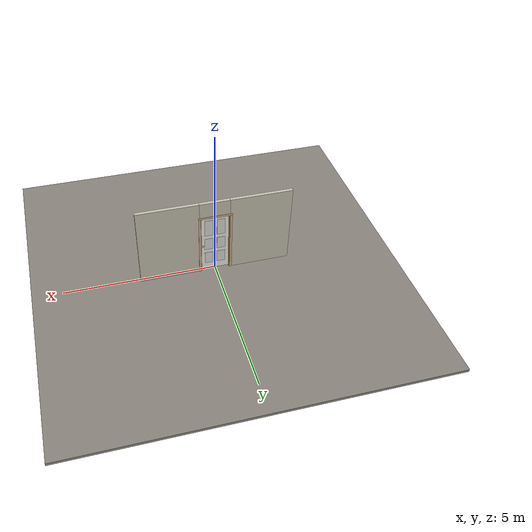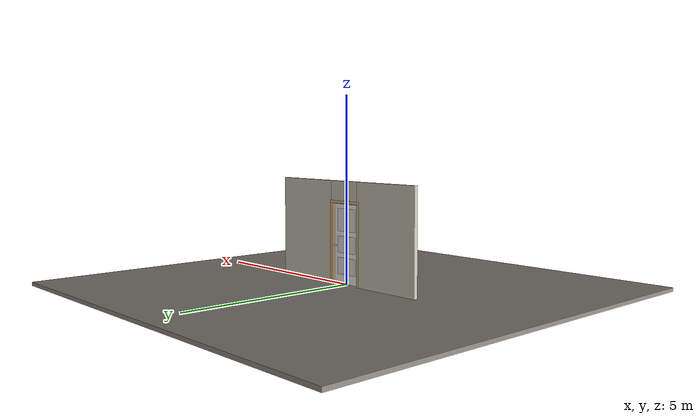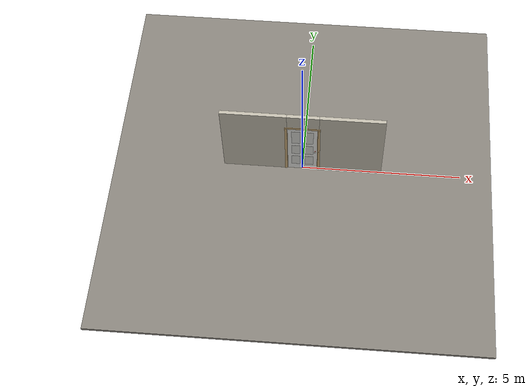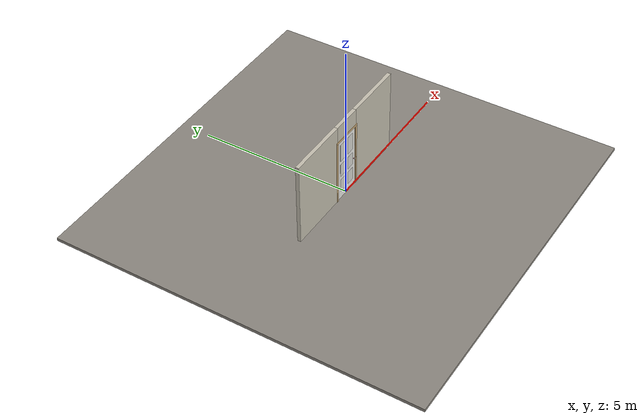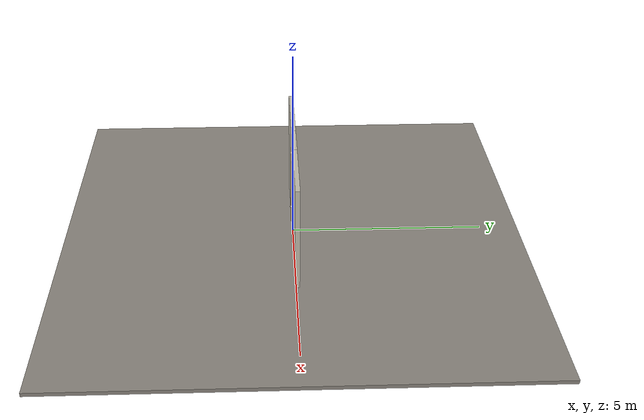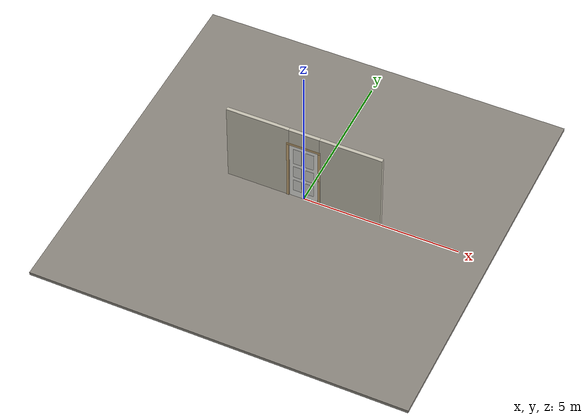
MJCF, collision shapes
<?xml version="1.0" ?>
<mujoco model="db0685_swing_single_full">
  <compiler angle="radian" meshdir="../../hardware" texturedir="../../textures" autolimits="true" inertiafromgeom="false"/>
  <option timestep="0.002" integrator="implicitfast" cone="elliptic" impratio="10" noslip_iterations="3">
    <flag multiccd="enable"/>
  </option>
  <size memory="16M"/>
  <default>
    <geom condim="4" solref="0.005 1" solimp="0.95 0.99 0.001"/>
    <joint solreflimit="0.005 1" solimplimit="0.95 0.99 0.001"/>
    <tendon solreflimit="0.005 1"/>
    <equality solref="0.002 1"/>
  </default>
  <visual>
    <headlight ambient="0.4 0.4 0.4" diffuse="0.7 0.7 0.7" specular="0.2 0.2 0.2"/>
    <quality shadowsize="4096"/>
    <map znear="0.01" zfar="60"/>
  </visual>
  <asset>
    <mesh name="hinge_9ae1f9b7de" file="hinge_9ae1f9b7de.obj"/>
    <mesh name="hinge_jamb_50e97ebc96" file="hinge_jamb_50e97ebc96.obj"/>
    <mesh name="knob_248d825e64" file="knob_248d825e64.obj"/>
    <mesh name="knob_d1888f6f03" file="knob_d1888f6f03.obj"/>
    <material name="mat_floor" rgba="0.55 0.53 0.5 1" specular="0.2" shininess="0.15" reflectance="0"/>
    <material name="mat_wall" rgba="0.78 0.76 0.7 1" specular="0.2" shininess="0.1" reflectance="0"/>
    <material name="mat_leaf" rgba="0.93 0.93 0.91 1" specular="0.2" shininess="0.36" reflectance="0"/>
    <material name="mat_leaf_panel" rgba="0.856 0.856 0.837 1" specular="0.2" shininess="0.36" reflectance="0"/>
    <material name="mat_hinge" rgba="0.65 0.66 0.68 1" specular="0.74" shininess="0.5" reflectance="0.36"/>
    <material name="mat_op_nickel_satin" rgba="0.72 0.7 0.66 1" specular="0.8" shininess="0.65" reflectance="0.4"/>
    <material name="mat_trim" rgba="0.85 0.66 0.3 1" specular="0.8" shininess="0.75" reflectance="0.4"/>
    <material name="mat_bolt" rgba="0.85 0.66 0.3 1" specular="0.8" shininess="0.75" reflectance="0.4"/>
    <material name="mat_frame" rgba="0.82 0.7 0.5 1" specular="0.2" shininess="0.45" reflectance="0"/>
    <texture name="skybox" type="skybox" builtin="gradient" rgb1="0.6 0.7 0.85" rgb2="0.9 0.92 0.95" width="256" height="256"/>
  </asset>
  <worldbody>
    <light name="sun" pos="1.5 -2.5 4" dir="-0.3 0.5 -0.8" directional="true" diffuse="0.8 0.8 0.8" specular="0.3 0.3 0.3" castshadow="true"/>
    <light name="fill" pos="-1.5 2.5 3" dir="0.3 -0.5 -0.7" directional="true" diffuse="0.35 0.35 0.4" castshadow="false"/>
    <camera name="robot_view" pos="0 -2.604812 1.812087" xyaxes="1 0 0 0 0.26963 0.962964" fovy="52"/>
    <camera name="far_view" pos="0 2.670812 1.812087" xyaxes="-1 0 0 0 -0.26963 0.962964" fovy="52"/>
    <camera name="iso" pos="2.004737 -2.182762 2.234138" xyaxes="0.741536 0.670913 0 -0.242917 0.268487 0.932151" fovy="46"/>
    <camera name="detail_handle" pos="0.5765 -0.864 1.296" xyaxes="0.97561 0.219512 0 -0.070934 0.315262 0.94635" fovy="38"/>
    <geom name="floor" type="box" size="6 6 0.05" pos="0 0 -0.05" material="mat_floor" group="0" contype="1" conaffinity="1" friction="0.8 0.005 0.0001" density="2400"/>
    <geom name="wall_left" type="box" size="1.01025 0.0575 1.3735" pos="-1.48975 0.033 1.3735" material="mat_wall" group="0" contype="1" conaffinity="1" friction="0.6 0.005 0.0001" density="800"/>
    <geom name="wall_right" type="box" size="0.99525 0.0575 1.3735" pos="1.50475 0.033 1.3735" material="mat_wall" group="0" contype="1" conaffinity="1" friction="0.6 0.005 0.0001" density="800"/>
    <geom name="wall_header" type="box" size="0.4945 0.0575 0.2755" pos="0.015 0.033 2.4715" material="mat_wall" group="0" contype="1" conaffinity="1" friction="0.6 0.005 0.0001" density="800"/>
    <geom name="hinge_0_jamb" type="mesh" mesh="hinge_jamb_50e97ebc96" pos="-0.4575 -0.0245 0.259" material="mat_hinge" group="1" contype="0" conaffinity="0" density="7850"/>
    <geom name="hinge_1_jamb" type="mesh" mesh="hinge_jamb_50e97ebc96" pos="-0.4575 -0.0245 1.076" material="mat_hinge" group="1" contype="0" conaffinity="0" density="7850"/>
    <geom name="hinge_2_jamb" type="mesh" mesh="hinge_jamb_50e97ebc96" pos="-0.4575 -0.0245 1.963" material="mat_hinge" group="1" contype="0" conaffinity="0" density="7850"/>
    <geom name="jamb_hinge" type="box" size="0.0095 0.0575 1.0735" pos="-0.47 0.033 1.0735" material="mat_frame" group="0" contype="1" conaffinity="1" friction="0.6 0.005 0.0001" density="400"/>
    <geom name="strike_1016_wall_n" type="box" size="0.0245 0.041325 0.0167" pos="0.485 0.049175 1.016" material="mat_frame" group="0" contype="1" conaffinity="1" friction="0.6 0.005 0.0001" density="400"/>
    <geom name="strike_1016_wall_p" type="box" size="0.0245 0.008 0.0167" pos="0.485 -0.01585 1.016" material="mat_frame" group="0" contype="1" conaffinity="1" friction="0.6 0.005 0.0001" density="400"/>
    <geom name="strike_1016_ramp" type="box" size="0.0245 0.01649 0.0167" pos="0.489636 -0.028673 1.016" quat="0.977148 0 0 0.212558" material="mat_frame" group="0" contype="1" conaffinity="1" friction="0.12 0.005 0.0001" density="400"/>
    <geom name="strike_1016_back" type="box" size="0.01615 0.00785 0.0167" pos="0.49335 0 1.016" material="mat_frame" group="0" contype="1" conaffinity="1" friction="0.6 0.005 0.0001" density="400"/>
    <geom name="jamb_strike_0" type="box" size="0.0245 0.0575 0.49965" pos="0.485 0.033 0.49965" material="mat_frame" group="0" contype="1" conaffinity="1" friction="0.6 0.005 0.0001" density="400"/>
    <geom name="jamb_strike_1" type="box" size="0.0245 0.0575 0.55715" pos="0.485 0.033 1.58985" material="mat_frame" group="0" contype="1" conaffinity="1" friction="0.6 0.005 0.0001" density="400"/>
    <geom name="jamb_head" type="box" size="0.4945 0.0575 0.0095" pos="0.015 0.033 2.1565" material="mat_frame" group="0" contype="1" conaffinity="1" friction="0.6 0.005 0.0001" density="400"/>
    <geom name="head_stud" type="box" size="0.4945 0.0575 0.015" pos="0.015 0.033 2.181" material="mat_wall" group="0" contype="1" conaffinity="1" friction="0.6 0.005 0.0001" density="500"/>
    <geom name="stop_hinge" type="box" size="0.0055 0.016 1.0735" pos="-0.455 0.034 1.0735" material="mat_frame" group="0" contype="1" conaffinity="1" friction="0.6 0.005 0.0001" density="400"/>
    <geom name="stop_strike" type="box" size="0.0055 0.016 1.0735" pos="0.455 0.034 1.0735" material="mat_frame" group="0" contype="1" conaffinity="1" friction="0.6 0.005 0.0001" density="400"/>
    <geom name="stop_head" type="box" size="0.4605 0.016 0.0055" pos="0 0.034 2.1415" material="mat_frame" group="0" contype="1" conaffinity="1" friction="0.6 0.005 0.0001" density="400"/>
    <geom name="casing_l_n" type="box" size="0.035 0.008 1.083" pos="-0.5095 -0.0325 1.0735" material="mat_frame" group="2" contype="0" conaffinity="0" density="400"/>
    <geom name="casing_r_n" type="box" size="0.035 0.008 1.083" pos="0.5095 -0.0325 1.0735" material="mat_frame" group="2" contype="0" conaffinity="0" density="400"/>
    <geom name="casing_h_n" type="box" size="0.5445 0.008 0.035" pos="0 -0.0325 2.196" material="mat_frame" group="2" contype="0" conaffinity="0" density="400"/>
    <geom name="casing_l_p" type="box" size="0.035 0.008 1.083" pos="-0.5095 0.0985 1.0735" material="mat_frame" group="2" contype="0" conaffinity="0" density="400"/>
    <geom name="casing_r_p" type="box" size="0.035 0.008 1.083" pos="0.5095 0.0985 1.0735" material="mat_frame" group="2" contype="0" conaffinity="0" density="400"/>
    <geom name="casing_h_p" type="box" size="0.5445 0.008 0.035" pos="0 0.0985 2.196" material="mat_frame" group="2" contype="0" conaffinity="0" density="400"/>
    <site name="approach_point" pos="0 -1.5 0" quat="1 0 0 0" size="0.05" rgba="0.2 0.9 0.2 0.5" group="4"/>
    <site name="goal_point" pos="0 1.5 0" quat="1 0 0 0" size="0.05" rgba="0.2 0.9 0.2 0.5" group="4"/>
    <site name="door_plane_center" pos="0 0 1.0735" quat="1 0 0 0" size="0.02" rgba="0.2 0.9 0.2 0.5" group="4"/>
    <body name="leaf" pos="-0.4605 0 0">
      <inertial pos="0.449996 -0.00047 1.076529" mass="14.454053" quat="-0.499497 0.500929 -0.499056 -0.500516" diaginertia="1.054053799 5.515956566 6.566835706"/>
      <joint name="leaf_hinge" type="hinge" axis="0 0 -1" pos="0.003 -0.0245 0" limited="true" range="0 2.094395" damping="0.318966" frictionloss="0.121178" armature="0.02"/>
      <geom name="leaf_slab" type="box" size="0.457 0.0175 1.067" pos="0.46 0 1.076" material="mat_leaf" group="0" contype="1" conaffinity="1" friction="0.35 0.005 0.0001" density="1"/>
      <geom name="leaf_panel_0_n" type="box" size="0.13573 0.003 0.221884" pos="0.25927 -0.0205 0.485624" material="mat_leaf_panel" group="1" contype="0" conaffinity="0" density="1"/>
      <geom name="leaf_panel_0_p" type="box" size="0.13573 0.003 0.221884" pos="0.25927 0.0205 0.485624" material="mat_leaf_panel" group="1" contype="0" conaffinity="0" density="1"/>
      <geom name="leaf_panel_1_n" type="box" size="0.13573 0.003 0.221884" pos="0.66073 -0.0205 0.485624" material="mat_leaf_panel" group="1" contype="0" conaffinity="0" density="1"/>
      <geom name="leaf_panel_1_p" type="box" size="0.13573 0.003 0.221884" pos="0.66073 0.0205 0.485624" material="mat_leaf_panel" group="1" contype="0" conaffinity="0" density="1"/>
      <geom name="leaf_panel_2_n" type="box" size="0.13573 0.003 0.221884" pos="0.25927 -0.0205 1.059392" material="mat_leaf_panel" group="1" contype="0" conaffinity="0" density="1"/>
      <geom name="leaf_panel_2_p" type="box" size="0.13573 0.003 0.221884" pos="0.25927 0.0205 1.059392" material="mat_leaf_panel" group="1" contype="0" conaffinity="0" density="1"/>
      <geom name="leaf_panel_3_n" type="box" size="0.13573 0.003 0.221884" pos="0.66073 -0.0205 1.059392" material="mat_leaf_panel" group="1" contype="0" conaffinity="0" density="1"/>
      <geom name="leaf_panel_3_p" type="box" size="0.13573 0.003 0.221884" pos="0.66073 0.0205 1.059392" material="mat_leaf_panel" group="1" contype="0" conaffinity="0" density="1"/>
      <geom name="leaf_panel_4_n" type="box" size="0.13573 0.003 0.302512" pos="0.25927 -0.0205 1.713788" material="mat_leaf_panel" group="1" contype="0" conaffinity="0" density="1"/>
      <geom name="leaf_panel_4_p" type="box" size="0.13573 0.003 0.302512" pos="0.25927 0.0205 1.713788" material="mat_leaf_panel" group="1" contype="0" conaffinity="0" density="1"/>
      <geom name="leaf_panel_5_n" type="box" size="0.13573 0.003 0.302512" pos="0.66073 -0.0205 1.713788" material="mat_leaf_panel" group="1" contype="0" conaffinity="0" density="1"/>
      <geom name="leaf_panel_5_p" type="box" size="0.13573 0.003 0.302512" pos="0.66073 0.0205 1.713788" material="mat_leaf_panel" group="1" contype="0" conaffinity="0" density="1"/>
      <geom name="hinge_0" type="mesh" mesh="hinge_9ae1f9b7de" pos="0.003 -0.0245 0.259" material="mat_hinge" group="1" contype="0" conaffinity="0" density="7850"/>
      <geom name="hinge_1" type="mesh" mesh="hinge_9ae1f9b7de" pos="0.003 -0.0245 1.076" material="mat_hinge" group="1" contype="0" conaffinity="0" density="7850"/>
      <geom name="hinge_2" type="mesh" mesh="hinge_9ae1f9b7de" pos="0.003 -0.0245 1.963" material="mat_hinge" group="1" contype="0" conaffinity="0" density="7850"/>
      <geom name="leaf_latch_bolt_faceplate" type="box" size="0.0006 0.01235 0.0267" pos="0.9164 0 1.016" material="mat_bolt" group="1" contype="0" conaffinity="0" density="8500"/>
      <site name="leaf_edge_mid" pos="0.917 0 1.067" quat="1 0 0 0" size="0.02" rgba="0.2 0.9 0.2 0.5" group="4"/>
      <body name="leaf_handle" pos="0.857 0 1.016">
        <inertial pos="0 0.000216 0" mass="1.146661" quat="0.5 0.5 0.5 0.5" diaginertia="0.000312402 0.003728942 0.003728942"/>
        <joint name="leaf_handle_hinge" type="hinge" axis="0 -1 0" limited="true" range="0 0.87" damping="0.143613" frictionloss="0.038" stiffness="0.5" springref="-0.5" armature="0.01"/>
        <geom name="leaf_handle_spindle" type="cylinder" size="0.006 0.0255" pos="0 0 0" quat="0.707107 -0.707107 0 0" material="mat_op_nickel_satin" group="1" contype="0" conaffinity="0" density="7850"/>
        <geom name="leaf_handle_knob_n" type="mesh" mesh="knob_d1888f6f03" pos="0 -0.0175 0" quat="0.707107 0.707107 0 0" material="mat_op_nickel_satin" group="1" contype="0" conaffinity="0" density="3000"/>
        <geom name="leaf_handle_knob_col_n" type="sphere" size="0.0243" pos="0 -0.064 0" material="mat_op_nickel_satin" group="0" contype="1" conaffinity="1" friction="0.9 0.01 0.0001" density="3000"/>
        <geom name="leaf_handle_knob_neck_n" type="cylinder" size="0.011 0.012" pos="0 -0.0295 0" quat="0.707107 -0.707107 0 0" material="mat_op_nickel_satin" group="3" contype="1" conaffinity="1" rgba="0.8 0.3 0.3 0.25" friction="0.6 0.005 0.0001" density="3000"/>
        <geom name="leaf_handle_knob_p" type="mesh" mesh="knob_248d825e64" pos="0 0.0175 0" quat="-0.707107 0.707107 0 0" material="mat_op_nickel_satin" group="1" contype="0" conaffinity="0" density="3000"/>
        <geom name="leaf_handle_knob_col_p" type="sphere" size="0.0243" pos="0 0.064 0" material="mat_op_nickel_satin" group="0" contype="1" conaffinity="1" friction="0.9 0.01 0.0001" density="3000"/>
        <geom name="leaf_handle_knob_neck_p" type="cylinder" size="0.011 0.012" pos="0 0.0295 0" quat="0.707107 -0.707107 0 0" material="mat_op_nickel_satin" group="3" contype="1" conaffinity="1" rgba="0.8 0.3 0.3 0.25" friction="0.6 0.005 0.0001" density="3000"/>
        <site name="leaf_handle_grip_n" pos="0 -0.064 0" quat="1 0 0 0" size="0.012" rgba="0.2 0.9 0.2 0.5" group="4"/>
        <site name="leaf_handle_grip_p" pos="0 0.064 0" quat="1 0 0 0" size="0.012" rgba="0.2 0.9 0.2 0.5" group="4"/>
      </body>
      <body name="leaf_latch_bolt" pos="0.917 0 1.016">
        <inertial pos="-0.00865 0 0" mass="0.041419" quat="0.92388 -0.382683 0 0" diaginertia="0.000000798 0.000005598 0.000005598"/>
        <joint name="leaf_latch_bolt_slide" type="slide" axis="-1 0 0" limited="true" range="0 0.0127" damping="2" frictionloss="0.3" stiffness="300" springref="-0.008333" armature="0.1"/>
        <geom name="leaf_latch_bolt_capsule" type="capsule" size="0.00635 0.015" pos="-0.00865 0 0" quat="0.707107 0 0.707107 0" material="mat_bolt" group="0" contype="1" conaffinity="1" friction="0.2 0.005 0.0001" density="8500"/>
      </body>
    </body>
  </worldbody>
  <tendon>
    <fixed name="leaf_latch_bolt_coupling" limited="true" range="0 10">
      <joint joint="leaf_latch_bolt_slide" coef="1"/>
      <joint joint="leaf_handle_hinge" coef="-0.015679"/>
    </fixed>
  </tendon>
  <sensor>
    <jointpos name="leaf_hinge_pos" joint="leaf_hinge"/>
    <jointvel name="leaf_hinge_vel" joint="leaf_hinge"/>
    <jointpos name="leaf_handle_hinge_pos" joint="leaf_handle_hinge"/>
    <jointvel name="leaf_handle_hinge_vel" joint="leaf_handle_hinge"/>
    <jointpos name="leaf_latch_bolt_slide_pos" joint="leaf_latch_bolt_slide"/>
    <jointvel name="leaf_latch_bolt_slide_vel" joint="leaf_latch_bolt_slide"/>
  </sensor>
</mujoco>
